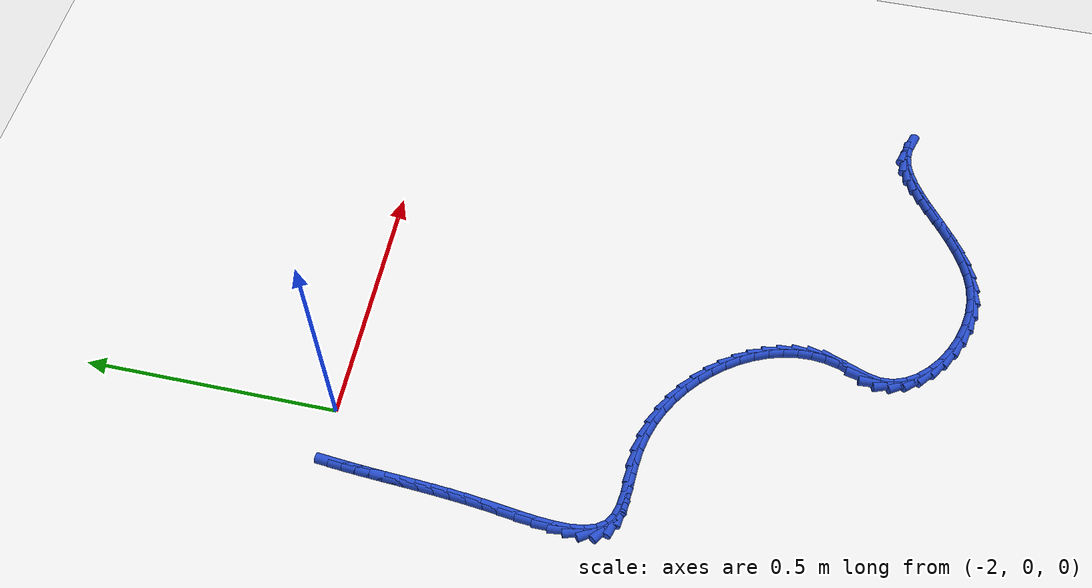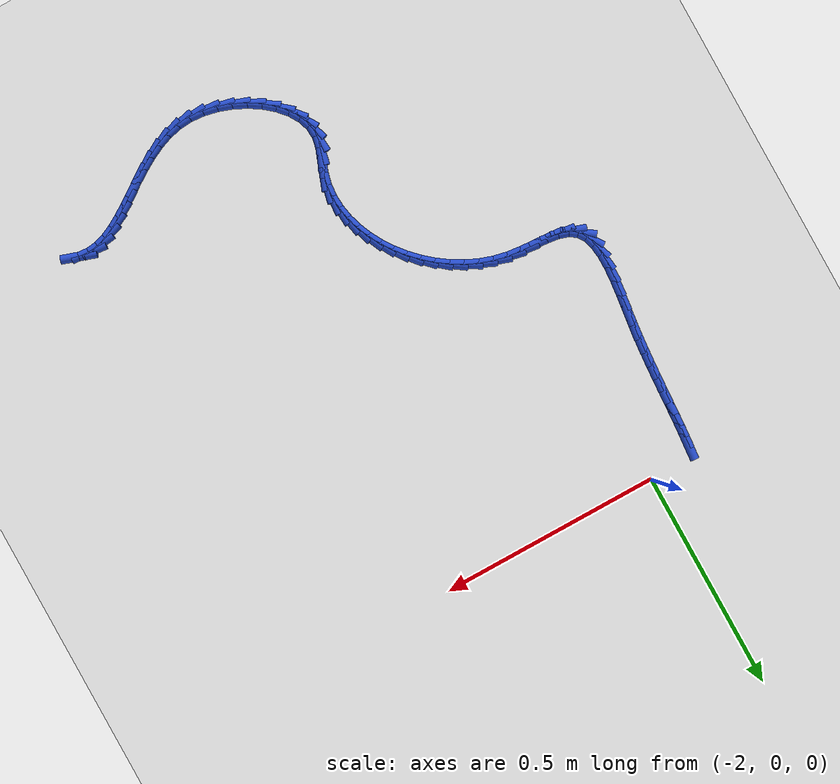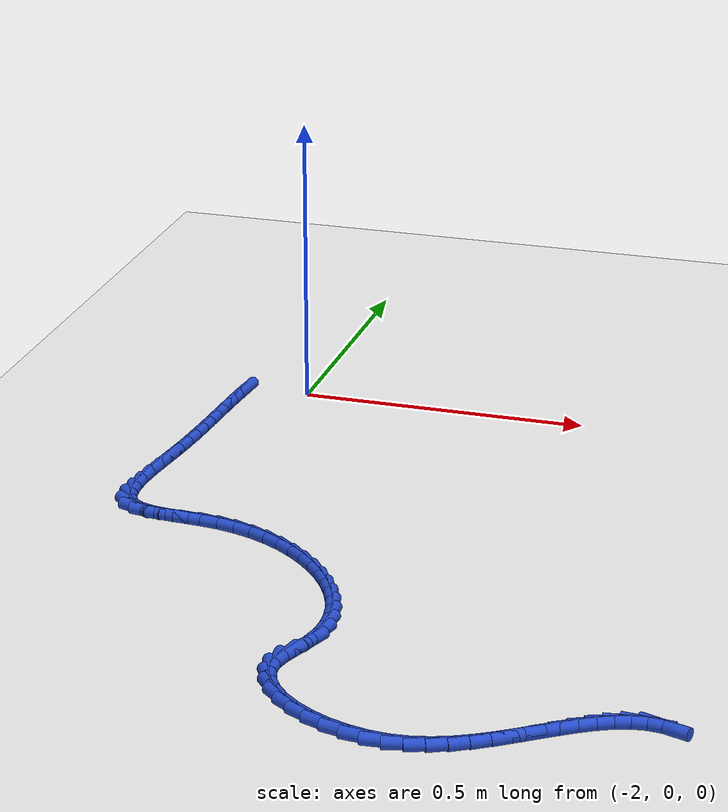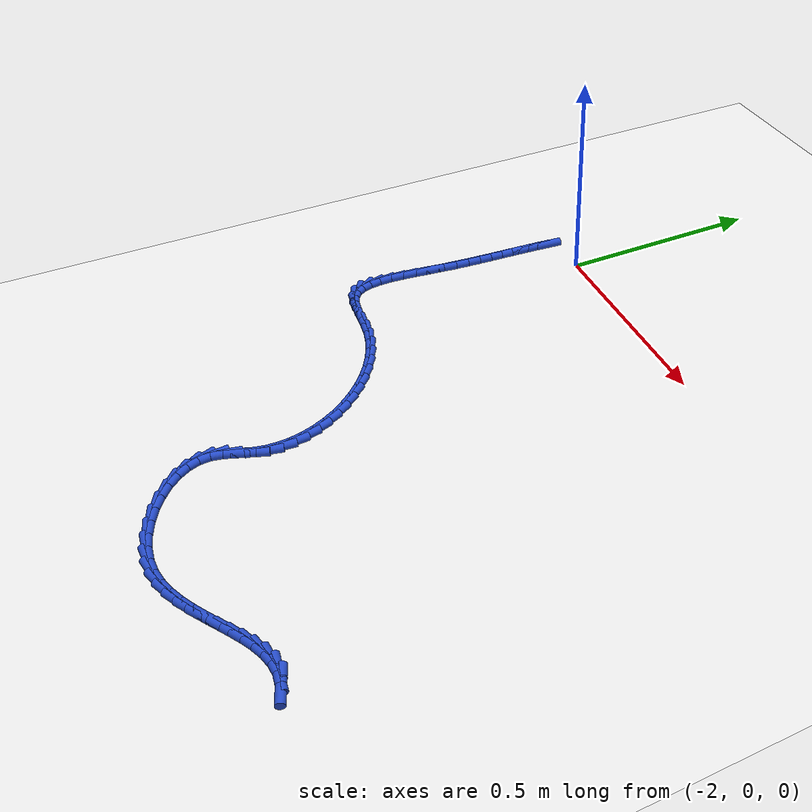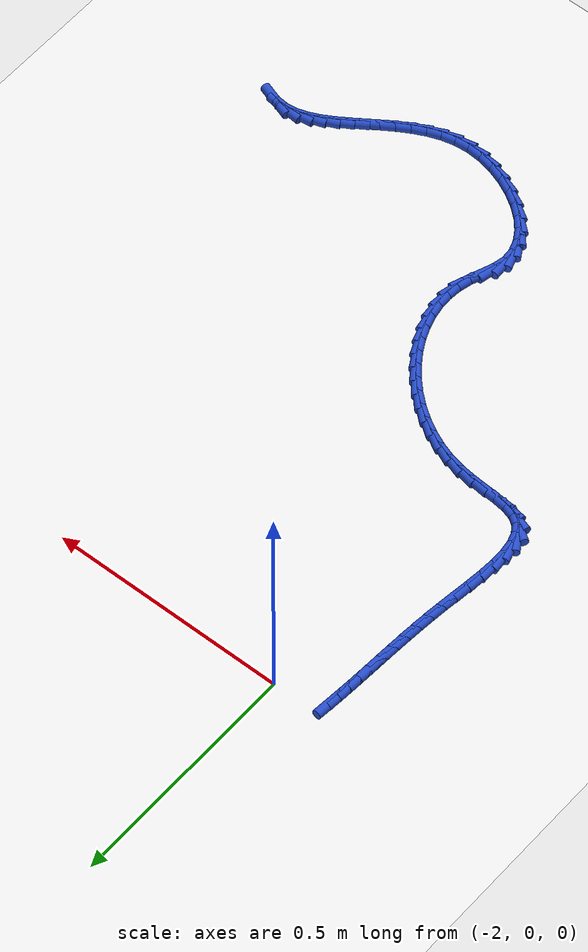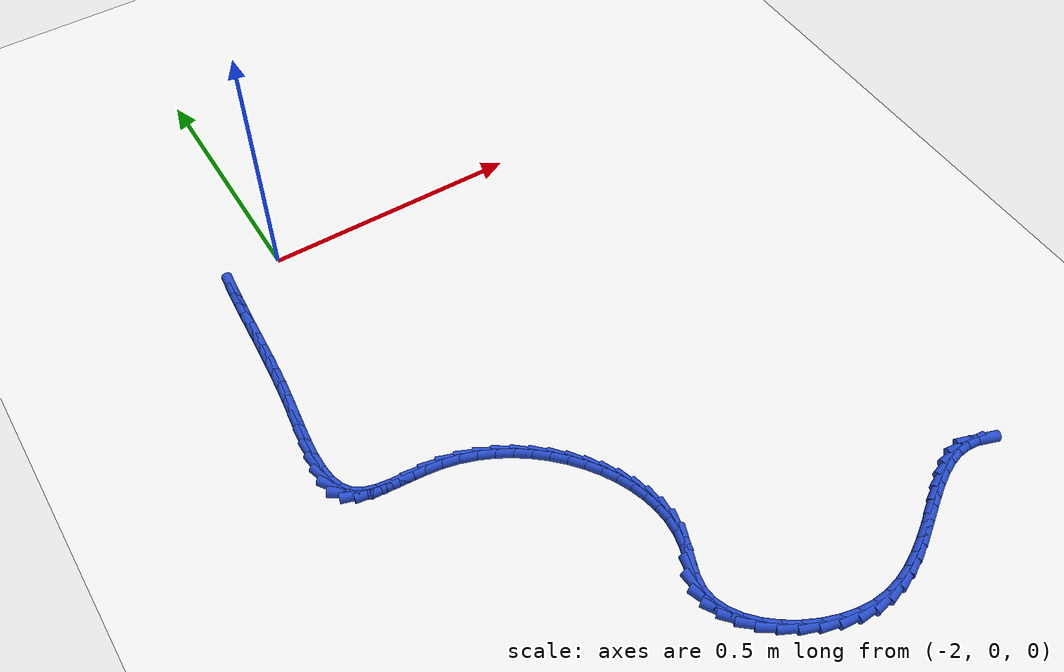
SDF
<sdf version="1.6">
 <world name="default">
  <model name="ground_plane">
   <static>1</static>
   <link name="link">
    <collision name="collision">
     <geometry><plane><normal>0 0 1</normal><size>100 100</size></plane></geometry>
     <surface><friction><ode><mu>100</mu><mu2>50</mu2></ode></friction></surface>
    </collision>
    <visual name="visual">
     <cast_shadows>0</cast_shadows>
     <geometry><plane><normal>0 0 1</normal><size>100 100</size></plane></geometry>
     <material>
      <script><uri>file://media/materials/scripts/gazebo.material</uri><name>Gazebo/WhiteGlow</name></script>
     </material>
    </visual>
   </link>
  </model>
  <model name="line">
   <link name="link_134">
    <pose>-2.1068086444791385 -0.03266669244758948 0.01 0 1.57 1.4844770521566288</pose>
    <collision name="collision">
     <geometry><cylinder><radius>0.01</radius><length>0.08</length></cylinder></geometry>
    </collision>
    <visual name="visual">
     <material>
      <script><name>Gazebo/Blue</name><uri>file://media/materials/scripts/gazebo.material</uri></script>
     </material>
     <geometry><cylinder><radius>0.01</radius><length>0.08</length></cylinder></geometry>
    </visual>
   </link>
   <link name="link_135">
    <pose>-2.1090573426039714 -0.058652896902352564 0.01 0 1.57 1.4979463491609721</pose>
    <collision name="collision">
     <geometry><cylinder><radius>0.01</radius><length>0.08</length></cylinder></geometry>
    </collision>
    <visual name="visual">
     <material>
      <script><name>Gazebo/Blue</name><uri>file://media/materials/scripts/gazebo.material</uri></script>
     </material>
     <geometry><cylinder><radius>0.01</radius><length>0.08</length></cylinder></geometry>
    </visual>
   </link>
   <link name="link_136">
    <pose>-2.110982095978381 -0.08502692289765218 0.01 0 1.57 1.5070027642279424</pose>
    <collision name="collision">
     <geometry><cylinder><radius>0.01</radius><length>0.08</length></cylinder></geometry>
    </collision>
    <visual name="visual">
     <material>
      <script><name>Gazebo/Blue</name><uri>file://media/materials/scripts/gazebo.material</uri></script>
     </material>
     <geometry><cylinder><radius>0.01</radius><length>0.08</length></cylinder></geometry>
    </visual>
   </link>
   <link name="link_137">
    <pose>-2.112695857216883 -0.11185464271410445 0.01 0 1.57 1.5117833160112184</pose>
    <collision name="collision">
     <geometry><cylinder><radius>0.01</radius><length>0.08</length></cylinder></geometry>
    </collision>
    <visual name="visual">
     <material>
      <script><name>Gazebo/Blue</name><uri>file://media/materials/scripts/gazebo.material</uri></script>
     </material>
     <geometry><cylinder><radius>0.01</radius><length>0.08</length></cylinder></geometry>
    </visual>
   </link>
   <link name="link_138">
    <pose>-2.1143115789339952 -0.13920192863232833 0.01 0 1.57 1.5124852854389133</pose>
    <collision name="collision">
     <geometry><cylinder><radius>0.01</radius><length>0.08</length></cylinder></geometry>
    </collision>
    <visual name="visual">
     <material>
      <script><name>Gazebo/Blue</name><uri>file://media/materials/scripts/gazebo.material</uri></script>
     </material>
     <geometry><cylinder><radius>0.01</radius><length>0.08</length></cylinder></geometry>
    </visual>
   </link>
   <link name="link_139">
    <pose>-2.115942213744233 -0.1671346529329395 0.01 0 1.57 1.5093533903541105</pose>
    <collision name="collision">
     <geometry><cylinder><radius>0.01</radius><length>0.08</length></cylinder></geometry>
    </collision>
    <visual name="visual">
     <material>
      <script><name>Gazebo/Blue</name><uri>file://media/materials/scripts/gazebo.material</uri></script>
     </material>
     <geometry><cylinder><radius>0.01</radius><length>0.08</length></cylinder></geometry>
    </visual>
   </link>
   <link name="link_140">
    <pose>-2.1177007142621145 -0.19571868789655616 0.01 0 1.57 1.50266862347929</pose>
    <collision name="collision">
     <geometry><cylinder><radius>0.01</radius><length>0.08</length></cylinder></geometry>
    </collision>
    <visual name="visual">
     <material>
      <script><name>Gazebo/Blue</name><uri>file://media/materials/scripts/gazebo.material</uri></script>
     </material>
     <geometry><cylinder><radius>0.01</radius><length>0.08</length></cylinder></geometry>
    </visual>
   </link>
   <link name="link_141">
    <pose>-2.119700033102155 -0.22501990580379655 0.01 0 1.57 1.492738642069525</pose>
    <collision name="collision">
     <geometry><cylinder><radius>0.01</radius><length>0.08</length></cylinder></geometry>
    </collision>
    <visual name="visual">
     <material>
      <script><name>Gazebo/Blue</name><uri>file://media/materials/scripts/gazebo.material</uri></script>
     </material>
     <geometry><cylinder><radius>0.01</radius><length>0.08</length></cylinder></geometry>
    </visual>
   </link>
   <link name="link_142">
    <pose>-2.122053122878872 -0.2551041789352762 0.01 0 1.57 1.4798894280258008</pose>
    <collision name="collision">
     <geometry><cylinder><radius>0.01</radius><length>0.08</length></cylinder></geometry>
    </collision>
    <visual name="visual">
     <material>
      <script><name>Gazebo/Blue</name><uri>file://media/materials/scripts/gazebo.material</uri></script>
     </material>
     <geometry><cylinder><radius>0.01</radius><length>0.08</length></cylinder></geometry>
    </visual>
   </link>
   <link name="link_143">
    <pose>-2.124872936206782 -0.2860373795716143 0.01 0 1.57 1.464457902787541</pose>
    <collision name="collision">
     <geometry><cylinder><radius>0.01</radius><length>0.08</length></cylinder></geometry>
    </collision>
    <visual name="visual">
     <material>
      <script><name>Gazebo/Blue</name><uri>file://media/materials/scripts/gazebo.material</uri></script>
     </material>
     <geometry><cylinder><radius>0.01</radius><length>0.08</length></cylinder></geometry>
    </visual>
   </link>
   <link name="link_144">
    <pose>-2.128272425700401 -0.31788537999342625 0.01 0 1.57 1.4480944627102281</pose>
    <collision name="collision">
     <geometry><cylinder><radius>0.01</radius><length>0.08</length></cylinder></geometry>
    </collision>
    <visual name="visual">
     <material>
      <script><name>Gazebo/Blue</name><uri>file://media/materials/scripts/gazebo.material</uri></script>
     </material>
     <geometry><cylinder><radius>0.01</radius><length>0.08</length></cylinder></geometry>
    </visual>
   </link>
   <link name="link_145">
    <pose>-2.1323146857202593 -0.3506636368152151 0.01 0 1.57 1.4446299850910094</pose>
    <collision name="collision">
     <geometry><cylinder><radius>0.01</radius><length>0.08</length></cylinder></geometry>
    </collision>
    <visual name="visual">
     <material>
      <script><name>Gazebo/Blue</name><uri>file://media/materials/scripts/gazebo.material</uri></script>
     </material>
     <geometry><cylinder><radius>0.01</radius><length>0.08</length></cylinder></geometry>
    </visual>
   </link>
   <link name="link_146">
    <pose>-2.1365230014316583 -0.38384176242356793 0.01 0 1.57 1.4621762337543636</pose>
    <collision name="collision">
     <geometry><cylinder><radius>0.01</radius><length>0.08</length></cylinder></geometry>
    </collision>
    <visual name="visual">
     <material>
      <script><name>Gazebo/Blue</name><uri>file://media/materials/scripts/gazebo.material</uri></script>
     </material>
     <geometry><cylinder><radius>0.01</radius><length>0.08</length></cylinder></geometry>
    </visual>
   </link>
   <link name="link_147">
    <pose>-2.1400904030120764 -0.4165554219873617 0.01 0 1.57 1.5035059491898177</pose>
    <collision name="collision">
     <geometry><cylinder><radius>0.01</radius><length>0.08</length></cylinder></geometry>
    </collision>
    <visual name="visual">
     <material>
      <script><name>Gazebo/Blue</name><uri>file://media/materials/scripts/gazebo.material</uri></script>
     </material>
     <geometry><cylinder><radius>0.01</radius><length>0.08</length></cylinder></geometry>
    </visual>
   </link>
   <link name="link_148">
    <pose>-2.1422051717268427 -0.44793547867078 0.01 0 1.57 -1.5656696876574665</pose>
    <collision name="collision">
     <geometry><cylinder><radius>0.01</radius><length>0.08</length></cylinder></geometry>
    </collision>
    <visual name="visual">
     <material>
      <script><name>Gazebo/Blue</name><uri>file://media/materials/scripts/gazebo.material</uri></script>
     </material>
     <geometry><cylinder><radius>0.01</radius><length>0.08</length></cylinder></geometry>
    </visual>
   </link>
   <link name="link_149">
    <pose>-2.1420555888412838 -0.4771127956380103 0.01 0 1.57 -1.4478569762145326</pose>
    <collision name="collision">
     <geometry><cylinder><radius>0.01</radius><length>0.08</length></cylinder></geometry>
    </collision>
    <visual name="visual">
     <material>
      <script><name>Gazebo/Blue</name><uri>file://media/materials/scripts/gazebo.material</uri></script>
     </material>
     <geometry><cylinder><radius>0.01</radius><length>0.08</length></cylinder></geometry>
    </visual>
   </link>
   <link name="link_150">
    <pose>-2.138829935620728 -0.5032182360532368 0.01 0 1.57 -1.2602412948703794</pose>
    <collision name="collision">
     <geometry><cylinder><radius>0.01</radius><length>0.08</length></cylinder></geometry>
    </collision>
    <visual name="visual">
     <material>
      <script><name>Gazebo/Blue</name><uri>file://media/materials/scripts/gazebo.material</uri></script>
     </material>
     <geometry><cylinder><radius>0.01</radius><length>0.08</length></cylinder></geometry>
    </visual>
   </link>
   <link name="link_151">
    <pose>-2.131716493330502 -0.525382663080646 0.01 0 1.57 -0.9731453382264331</pose>
    <collision name="collision">
     <geometry><cylinder><radius>0.01</radius><length>0.08</length></cylinder></geometry>
    </collision>
    <visual name="visual">
     <material>
      <script><name>Gazebo/Blue</name><uri>file://media/materials/scripts/gazebo.material</uri></script>
     </material>
     <geometry><cylinder><radius>0.01</radius><length>0.08</length></cylinder></geometry>
    </visual>
   </link>
   <link name="link_152">
    <pose>-2.1199035432359343 -0.5427369398844241 0.01 0 1.57 -0.5995415961542163</pose>
    <collision name="collision">
     <geometry><cylinder><radius>0.01</radius><length>0.08</length></cylinder></geometry>
    </collision>
    <visual name="visual">
     <material>
      <script><name>Gazebo/Blue</name><uri>file://media/materials/scripts/gazebo.material</uri></script>
     </material>
     <geometry><cylinder><radius>0.01</radius><length>0.08</length></cylinder></geometry>
    </visual>
   </link>
   <link name="link_153">
    <pose>-2.102662566532243 -0.554520527866192 0.01 0 1.57 -0.29843457311137883</pose>
    <collision name="collision">
     <geometry><cylinder><radius>0.01</radius><length>0.08</length></cylinder></geometry>
    </collision>
    <visual name="visual">
     <material>
      <script><name>Gazebo/Blue</name><uri>file://media/materials/scripts/gazebo.material</uri></script>
     </material>
     <geometry><cylinder><radius>0.01</radius><length>0.08</length></cylinder></geometry>
    </visual>
   </link>
   <link name="link_154">
    <pose>-2.080347094895389 -0.5613852547021646 0.01 0 1.57 -0.13560051174953994</pose>
    <collision name="collision">
     <geometry><cylinder><radius>0.01</radius><length>0.08</length></cylinder></geometry>
    </collision>
    <visual name="visual">
     <material>
      <script><name>Gazebo/Blue</name><uri>file://media/materials/scripts/gazebo.material</uri></script>
     </material>
     <geometry><cylinder><radius>0.01</radius><length>0.08</length></cylinder></geometry>
    </visual>
   </link>
   <link name="link_155">
    <pose>-2.054067470263263 -0.5649707885706685 0.01 0 1.57 -0.0674260516540573</pose>
    <collision name="collision">
     <geometry><cylinder><radius>0.01</radius><length>0.08</length></cylinder></geometry>
    </collision>
    <visual name="visual">
     <material>
      <script><name>Gazebo/Blue</name><uri>file://media/materials/scripts/gazebo.material</uri></script>
     </material>
     <geometry><cylinder><radius>0.01</radius><length>0.08</length></cylinder></geometry>
    </visual>
   </link>
   <link name="link_156">
    <pose>-2.024949569073129 -0.566937074340819 0.01 0 1.57 -0.06500600501013208</pose>
    <collision name="collision">
     <geometry><cylinder><radius>0.01</radius><length>0.08</length></cylinder></geometry>
    </collision>
    <visual name="visual">
     <material>
      <script><name>Gazebo/Blue</name><uri>file://media/materials/scripts/gazebo.material</uri></script>
     </material>
     <geometry><cylinder><radius>0.01</radius><length>0.08</length></cylinder></geometry>
    </visual>
   </link>
   <link name="link_157">
    <pose>-1.9941192677622555 -0.5689440568817304 0.01 0 1.57 -0.11747062935977712</pose>
    <collision name="collision">
     <geometry><cylinder><radius>0.01</radius><length>0.08</length></cylinder></geometry>
    </collision>
    <visual name="visual">
     <material>
      <script><name>Gazebo/Blue</name><uri>file://media/materials/scripts/gazebo.material</uri></script>
     </material>
     <geometry><cylinder><radius>0.01</radius><length>0.08</length></cylinder></geometry>
    </visual>
   </link>
   <link name="link_158">
    <pose>-1.9627024427679076 -0.572651681062518 0.01 0 1.57 -0.21743974920453565</pose>
    <collision name="collision">
     <geometry><cylinder><radius>0.01</radius><length>0.08</length></cylinder></geometry>
    </collision>
    <visual name="visual">
     <material>
      <script><name>Gazebo/Blue</name><uri>file://media/materials/scripts/gazebo.material</uri></script>
     </material>
     <geometry><cylinder><radius>0.01</radius><length>0.08</length></cylinder></geometry>
    </visual>
   </link>
   <link name="link_159">
    <pose>-1.9317218896990032 -0.5794962975584382 0.01 0 1.57 -0.325160966967731</pose>
    <collision name="collision">
     <geometry><cylinder><radius>0.01</radius><length>0.08</length></cylinder></geometry>
    </collision>
    <visual name="visual">
     <material>
      <script><name>Gazebo/Blue</name><uri>file://media/materials/scripts/gazebo.material</uri></script>
     </material>
     <geometry><cylinder><radius>0.01</radius><length>0.08</length></cylinder></geometry>
    </visual>
   </link>
   <link name="link_160">
    <pose>-1.9016156764080483 -0.5896459151676622 0.01 0 1.57 -0.4264633647474093</pose>
    <collision name="collision">
     <geometry><cylinder><radius>0.01</radius><length>0.08</length></cylinder></geometry>
    </collision>
    <visual name="visual">
     <material>
      <script><name>Gazebo/Blue</name><uri>file://media/materials/scripts/gazebo.material</uri></script>
     </material>
     <geometry><cylinder><radius>0.01</radius><length>0.08</length></cylinder></geometry>
    </visual>
   </link>
   <link name="link_161">
    <pose>-1.87261594598807 -0.6028218681580182 0.01 0 1.57 -0.5223192898124341</pose>
    <collision name="collision">
     <geometry><cylinder><radius>0.01</radius><length>0.08</length></cylinder></geometry>
    </collision>
    <visual name="visual">
     <material>
      <script><name>Gazebo/Blue</name><uri>file://media/materials/scripts/gazebo.material</uri></script>
     </material>
     <geometry><cylinder><radius>0.01</radius><length>0.08</length></cylinder></geometry>
    </visual>
   </link>
   <link name="link_162">
    <pose>-1.8449546116221913 -0.6187449920962529 0.01 0 1.57 -0.6139958991740627</pose>
    <collision name="collision">
     <geometry><cylinder><radius>0.01</radius><length>0.08</length></cylinder></geometry>
    </collision>
    <visual name="visual">
     <material>
      <script><name>Gazebo/Blue</name><uri>file://media/materials/scripts/gazebo.material</uri></script>
     </material>
     <geometry><cylinder><radius>0.01</radius><length>0.08</length></cylinder></geometry>
    </visual>
   </link>
   <link name="link_163">
    <pose>-1.8188635864935327 -0.6371361225491149 0.01 0 1.57 -0.7029261627513926</pose>
    <collision name="collision">
     <geometry><cylinder><radius>0.01</radius><length>0.08</length></cylinder></geometry>
    </collision>
    <visual name="visual">
     <material>
      <script><name>Gazebo/Blue</name><uri>file://media/materials/scripts/gazebo.material</uri></script>
     </material>
     <geometry><cylinder><radius>0.01</radius><length>0.08</length></cylinder></geometry>
    </visual>
   </link>
   <link name="link_164">
    <pose>-1.7945747837852166 -0.6577160950833507 0.01 0 1.57 -0.790649800510116</pose>
    <collision name="collision">
     <geometry><cylinder><radius>0.01</radius><length>0.08</length></cylinder></geometry>
    </collision>
    <visual name="visual">
     <material>
      <script><name>Gazebo/Blue</name><uri>file://media/materials/scripts/gazebo.material</uri></script>
     </material>
     <geometry><cylinder><radius>0.01</radius><length>0.08</length></cylinder></geometry>
    </visual>
   </link>
   <link name="link_165">
    <pose>-1.7723201166803624 -0.6802057452657091 0.01 0 1.57 -0.8787928428503465</pose>
    <collision name="collision">
     <geometry><cylinder><radius>0.01</radius><length>0.08</length></cylinder></geometry>
    </collision>
    <visual name="visual">
     <material>
      <script><name>Gazebo/Blue</name><uri>file://media/materials/scripts/gazebo.material</uri></script>
     </material>
     <geometry><cylinder><radius>0.01</radius><length>0.08</length></cylinder></geometry>
    </visual>
   </link>
   <link name="link_166">
    <pose>-1.7523314983620932 -0.7043259086629363 0.01 0 1.57 -0.9690692559582508</pose>
    <collision name="collision">
     <geometry><cylinder><radius>0.01</radius><length>0.08</length></cylinder></geometry>
    </collision>
    <visual name="visual">
     <material>
      <script><name>Gazebo/Blue</name><uri>file://media/materials/scripts/gazebo.material</uri></script>
     </material>
     <geometry><cylinder><radius>0.01</radius><length>0.08</length></cylinder></geometry>
    </visual>
   </link>
   <link name="link_167">
    <pose>-1.7348408420135288 -0.7297974208417812 0.01 0 1.57 -1.0632867278077511</pose>
    <collision name="collision">
     <geometry><cylinder><radius>0.01</radius><length>0.08</length></cylinder></geometry>
    </collision>
    <visual name="visual">
     <material>
      <script><name>Gazebo/Blue</name><uri>file://media/materials/scripts/gazebo.material</uri></script>
     </material>
     <geometry><cylinder><radius>0.01</radius><length>0.08</length></cylinder></geometry>
    </visual>
   </link>
   <link name="link_168">
    <pose>-1.7200800608177924 -0.7563411173689903 0.01 0 1.57 -1.163334356854767</pose>
    <collision name="collision">
     <geometry><cylinder><radius>0.01</radius><length>0.08</length></cylinder></geometry>
    </collision>
    <visual name="visual">
     <material>
      <script><name>Gazebo/Blue</name><uri>file://media/materials/scripts/gazebo.material</uri></script>
     </material>
     <geometry><cylinder><radius>0.01</radius><length>0.08</length></cylinder></geometry>
    </visual>
   </link>
   <link name="link_169">
    <pose>-1.7082810679580032 -0.7836778338113123 0.01 0 1.57 -1.2711207881562754</pose>
    <collision name="collision">
     <geometry><cylinder><radius>0.01</radius><length>0.08</length></cylinder></geometry>
    </collision>
    <visual name="visual">
     <material>
      <script><name>Gazebo/Blue</name><uri>file://media/materials/scripts/gazebo.material</uri></script>
     </material>
     <geometry><cylinder><radius>0.01</radius><length>0.08</length></cylinder></geometry>
    </visual>
   </link>
   <link name="link_170">
    <pose>-1.6996757766172843 -0.8115284057354933 0.01 0 1.57 -1.3884187984460727</pose>
    <collision name="collision">
     <geometry><cylinder><radius>0.01</radius><length>0.08</length></cylinder></geometry>
    </collision>
    <visual name="visual">
     <material>
      <script><name>Gazebo/Blue</name><uri>file://media/materials/scripts/gazebo.material</uri></script>
     </material>
     <geometry><cylinder><radius>0.01</radius><length>0.08</length></cylinder></geometry>
    </visual>
   </link>
   <link name="link_171">
    <pose>-1.694496099978756 -0.8396136687082818 0.01 0 1.57 -1.5165661743738852</pose>
    <collision name="collision">
     <geometry><cylinder><radius>0.01</radius><length>0.08</length></cylinder></geometry>
    </collision>
    <visual name="visual">
     <material>
      <script><name>Gazebo/Blue</name><uri>file://media/materials/scripts/gazebo.material</uri></script>
     </material>
     <geometry><cylinder><radius>0.01</radius><length>0.08</length></cylinder></geometry>
    </visual>
   </link>
   <link name="link_172">
    <pose>-1.69297395122554 -0.8676544582964261 0.01 0 1.57 1.485594168202156</pose>
    <collision name="collision">
     <geometry><cylinder><radius>0.01</radius><length>0.08</length></cylinder></geometry>
    </collision>
    <visual name="visual">
     <material>
      <script><name>Gazebo/Blue</name><uri>file://media/materials/scripts/gazebo.material</uri></script>
     </material>
     <geometry><cylinder><radius>0.01</radius><length>0.08</length></cylinder></geometry>
    </visual>
   </link>
   <link name="link_173">
    <pose>-1.6953412435407575 -0.8953716100666722 0.01 0 1.57 1.33591221660681</pose>
    <collision name="collision">
     <geometry><cylinder><radius>0.01</radius><length>0.08</length></cylinder></geometry>
    </collision>
    <visual name="visual">
     <material>
      <script><name>Gazebo/Blue</name><uri>file://media/materials/scripts/gazebo.material</uri></script>
     </material>
     <geometry><cylinder><radius>0.01</radius><length>0.08</length></cylinder></geometry>
    </visual>
   </link>
   <link name="link_174">
    <pose>-1.7018297435992598 -0.9224859779084221 0.01 0 1.57 1.2093223872117105</pose>
    <collision name="collision">
     <geometry><cylinder><radius>0.01</radius><length>0.08</length></cylinder></geometry>
    </collision>
    <visual name="visual">
     <material>
      <script><name>Gazebo/Blue</name><uri>file://media/materials/scripts/gazebo.material</uri></script>
     </material>
     <geometry><cylinder><radius>0.01</radius><length>0.08</length></cylinder></geometry>
    </visual>
   </link>
   <link name="link_175">
    <pose>-1.7117895640250034 -0.9488286773426898 0.01 0 1.57 1.2068420103206203</pose>
    <collision name="collision">
     <geometry><cylinder><radius>0.01</radius><length>0.08</length></cylinder></geometry>
    </collision>
    <visual name="visual">
     <material>
      <script><name>Gazebo/Blue</name><uri>file://media/materials/scripts/gazebo.material</uri></script>
     </material>
     <geometry><cylinder><radius>0.01</radius><length>0.08</length></cylinder></geometry>
    </visual>
   </link>
   <link name="link_176">
    <pose>-1.7216070472262102 -0.9746014796362364 0.01 0 1.57 1.3603385348905275</pose>
    <collision name="collision">
     <geometry><cylinder><radius>0.01</radius><length>0.08</length></cylinder></geometry>
    </collision>
    <visual name="visual">
     <material>
      <script><name>Gazebo/Blue</name><uri>file://media/materials/scripts/gazebo.material</uri></script>
     </material>
     <geometry><cylinder><radius>0.01</radius><length>0.08</length></cylinder></geometry>
    </visual>
   </link>
   <link name="link_177">
    <pose>-1.727050512895585 -1.0000833546453527 0.01 0 1.57 -1.4990492773579278</pose>
    <collision name="collision">
     <geometry><cylinder><radius>0.01</radius><length>0.08</length></cylinder></geometry>
    </collision>
    <visual name="visual">
     <material>
      <script><name>Gazebo/Blue</name><uri>file://media/materials/scripts/gazebo.material</uri></script>
     </material>
     <geometry><cylinder><radius>0.01</radius><length>0.08</length></cylinder></geometry>
    </visual>
   </link>
   <link name="link_178">
    <pose>-1.7252342797090792 -1.0253542987896247 0.01 0 1.57 -1.2323733453197427</pose>
    <collision name="collision">
     <geometry><cylinder><radius>0.01</radius><length>0.08</length></cylinder></geometry>
    </collision>
    <visual name="visual">
     <material>
      <script><name>Gazebo/Blue</name><uri>file://media/materials/scripts/gazebo.material</uri></script>
     </material>
     <geometry><cylinder><radius>0.01</radius><length>0.08</length></cylinder></geometry>
    </visual>
   </link>
   <link name="link_179">
    <pose>-1.7165567838689162 -1.0500088310411135 0.01 0 1.57 -1.0145239279126634</pose>
    <collision name="collision">
     <geometry><cylinder><radius>0.01</radius><length>0.08</length></cylinder></geometry>
    </collision>
    <visual name="visual">
     <material>
      <script><name>Gazebo/Blue</name><uri>file://media/materials/scripts/gazebo.material</uri></script>
     </material>
     <geometry><cylinder><radius>0.01</radius><length>0.08</length></cylinder></geometry>
    </visual>
   </link>
   <link name="link_180">
    <pose>-1.7019079168527156 -1.0735688205806502 0.01 0 1.57 -0.8394465211785888</pose>
    <collision name="collision">
     <geometry><cylinder><radius>0.01</radius><length>0.08</length></cylinder></geometry>
    </collision>
    <visual name="visual">
     <material>
      <script><name>Gazebo/Blue</name><uri>file://media/materials/scripts/gazebo.material</uri></script>
     </material>
     <geometry><cylinder><radius>0.01</radius><length>0.08</length></cylinder></geometry>
    </visual>
   </link>
   <link name="link_181">
    <pose>-1.6821775701380954 -1.095556136589062 0.01 0 1.57 -0.6947769058196288</pose>
    <collision name="collision">
     <geometry><cylinder><radius>0.01</radius><length>0.08</length></cylinder></geometry>
    </collision>
    <visual name="visual">
     <material>
      <script><name>Gazebo/Blue</name><uri>file://media/materials/scripts/gazebo.material</uri></script>
     </material>
     <geometry><cylinder><radius>0.01</radius><length>0.08</length></cylinder></geometry>
    </visual>
   </link>
   <link name="link_182">
    <pose>-1.6582556352026745 -1.1154926482471796 0.01 0 1.57 -0.5689079260078574</pose>
    <collision name="collision">
     <geometry><cylinder><radius>0.01</radius><length>0.08</length></cylinder></geometry>
    </collision>
    <visual name="visual">
     <material>
      <script><name>Gazebo/Blue</name><uri>file://media/materials/scripts/gazebo.material</uri></script>
     </material>
     <geometry><cylinder><radius>0.01</radius><length>0.08</length></cylinder></geometry>
    </visual>
   </link>
   <link name="link_183">
    <pose>-1.6310320035240695 -1.1329002247358322 0.01 0 1.57 -0.45232190535778805</pose>
    <collision name="collision">
     <geometry><cylinder><radius>0.01</radius><length>0.08</length></cylinder></geometry>
    </collision>
    <visual name="visual">
     <material>
      <script><name>Gazebo/Blue</name><uri>file://media/materials/scripts/gazebo.material</uri></script>
     </material>
     <geometry><cylinder><radius>0.01</radius><length>0.08</length></cylinder></geometry>
    </visual>
   </link>
   <link name="link_184">
    <pose>-1.6013965665799004 -1.147300735235848 0.01 0 1.57 -0.3369676040064986</pose>
    <collision name="collision">
     <geometry><cylinder><radius>0.01</radius><length>0.08</length></cylinder></geometry>
    </collision>
    <visual name="visual">
     <material>
      <script><name>Gazebo/Blue</name><uri>file://media/materials/scripts/gazebo.material</uri></script>
     </material>
     <geometry><cylinder><radius>0.01</radius><length>0.08</length></cylinder></geometry>
    </visual>
   </link>
   <link name="link_185">
    <pose>-1.5702392158477845 -1.1582160489280575 0.01 0 1.57 -0.21529948051987166</pose>
    <collision name="collision">
     <geometry><cylinder><radius>0.01</radius><length>0.08</length></cylinder></geometry>
    </collision>
    <visual name="visual">
     <material>
      <script><name>Gazebo/Blue</name><uri>file://media/materials/scripts/gazebo.material</uri></script>
     </material>
     <geometry><cylinder><radius>0.01</radius><length>0.08</length></cylinder></geometry>
    </visual>
   </link>
   <link name="link_186">
    <pose>-1.538449842805341 -1.1651680349932891 0.01 0 1.57 -0.0794520530398237</pose>
    <collision name="collision">
     <geometry><cylinder><radius>0.01</radius><length>0.08</length></cylinder></geometry>
    </collision>
    <visual name="visual">
     <material>
      <script><name>Gazebo/Blue</name><uri>file://media/materials/scripts/gazebo.material</uri></script>
     </material>
     <geometry><cylinder><radius>0.01</radius><length>0.08</length></cylinder></geometry>
    </visual>
   </link>
   <link name="link_187">
    <pose>-1.5069183389301877 -1.1676785626123727 0.01 0 1.57 0.0763461073488774</pose>
    <collision name="collision">
     <geometry><cylinder><radius>0.01</radius><length>0.08</length></cylinder></geometry>
    </collision>
    <visual name="visual">
     <material>
      <script><name>Gazebo/Blue</name><uri>file://media/materials/scripts/gazebo.material</uri></script>
     </material>
     <geometry><cylinder><radius>0.01</radius><length>0.08</length></cylinder></geometry>
    </visual>
   </link>
   <link name="link_188">
    <pose>-1.4764710176417144 -1.1653495012382622 0.01 0 1.57 0.22911485402538898</pose>
    <collision name="collision">
     <geometry><cylinder><radius>0.01</radius><length>0.08</length></cylinder></geometry>
    </collision>
    <visual name="visual">
     <material>
      <script><name>Gazebo/Blue</name><uri>file://media/materials/scripts/gazebo.material</uri></script>
     </material>
     <geometry><cylinder><radius>0.01</radius><length>0.08</length></cylinder></geometry>
    </visual>
   </link>
   <link name="link_189">
    <pose>-1.4473229250647424 -1.1585518779746669 0.01 0 1.57 0.3579985848579884</pose>
    <collision name="collision">
     <geometry><cylinder><radius>0.01</radius><length>0.08</length></cylinder></geometry>
    </collision>
    <visual name="visual">
     <material>
      <script><name>Gazebo/Blue</name><uri>file://media/materials/scripts/gazebo.material</uri></script>
     </material>
     <geometry><cylinder><radius>0.01</radius><length>0.08</length></cylinder></geometry>
    </visual>
   </link>
   <link name="link_190">
    <pose>-1.4193480152744542 -1.1480859160591665 0.01 0 1.57 0.45958975057747203</pose>
    <collision name="collision">
     <geometry><cylinder><radius>0.01</radius><length>0.08</length></cylinder></geometry>
    </collision>
    <visual name="visual">
     <material>
      <script><name>Gazebo/Blue</name><uri>file://media/materials/scripts/gazebo.material</uri></script>
     </material>
     <geometry><cylinder><radius>0.01</radius><length>0.08</length></cylinder></geometry>
    </visual>
   </link>
   <link name="link_191">
    <pose>-1.3924165341145767 -1.134756504797066 0.01 0 1.57 0.5341015989774492</pose>
    <collision name="collision">
     <geometry><cylinder><radius>0.01</radius><length>0.08</length></cylinder></geometry>
    </collision>
    <visual name="visual">
     <material>
      <script><name>Gazebo/Blue</name><uri>file://media/materials/scripts/gazebo.material</uri></script>
     </material>
     <geometry><cylinder><radius>0.01</radius><length>0.08</length></cylinder></geometry>
    </visual>
   </link>
   <link name="link_192">
    <pose>-1.36639872742884 -1.1193685334936718 0.01 0 1.57 0.5830217124949343</pose>
    <collision name="collision">
     <geometry><cylinder><radius>0.01</radius><length>0.08</length></cylinder></geometry>
    </collision>
    <visual name="visual">
     <material>
      <script><name>Gazebo/Blue</name><uri>file://media/materials/scripts/gazebo.material</uri></script>
     </material>
     <geometry><cylinder><radius>0.01</radius><length>0.08</length></cylinder></geometry>
    </visual>
   </link>
   <link name="link_193">
    <pose>-1.34116484106097 -1.1027268914542874 0.01 0 1.57 0.6075685816240671</pose>
    <collision name="collision">
     <geometry><cylinder><radius>0.01</radius><length>0.08</length></cylinder></geometry>
    </collision>
    <visual name="visual">
     <material>
      <script><name>Gazebo/Blue</name><uri>file://media/materials/scripts/gazebo.material</uri></script>
     </material>
     <geometry><cylinder><radius>0.01</radius><length>0.08</length></cylinder></geometry>
    </visual>
   </link>
   <link name="link_194">
    <pose>-1.316585120854695 -1.0856364679842183 0.01 0 1.57 0.6078072669649497</pose>
    <collision name="collision">
     <geometry><cylinder><radius>0.01</radius><length>0.08</length></cylinder></geometry>
    </collision>
    <visual name="visual">
     <material>
      <script><name>Gazebo/Blue</name><uri>file://media/materials/scripts/gazebo.material</uri></script>
     </material>
     <geometry><cylinder><radius>0.01</radius><length>0.08</length></cylinder></geometry>
    </visual>
   </link>
   <link name="link_195">
    <pose>-1.2925298126537421 -1.0689021523887694 0.01 0 1.57 0.5821145508457927</pose>
    <collision name="collision">
     <geometry><cylinder><radius>0.01</radius><length>0.08</length></cylinder></geometry>
    </collision>
    <visual name="visual">
     <material>
      <script><name>Gazebo/Blue</name><uri>file://media/materials/scripts/gazebo.material</uri></script>
     </material>
     <geometry><cylinder><radius>0.01</radius><length>0.08</length></cylinder></geometry>
    </visual>
   </link>
   <link name="link_196">
    <pose>-1.2688691623018398 -1.0533288339732454 0.01 0 1.57 0.5267950815919522</pose>
    <collision name="collision">
     <geometry><cylinder><radius>0.01</radius><length>0.08</length></cylinder></geometry>
    </collision>
    <visual name="visual">
     <material>
      <script><name>Gazebo/Blue</name><uri>file://media/materials/scripts/gazebo.material</uri></script>
     </material>
     <geometry><cylinder><radius>0.01</radius><length>0.08</length></cylinder></geometry>
    </visual>
   </link>
   <link name="link_197">
    <pose>-1.2454734156427163 -1.0397214020429524 0.01 0 1.57 0.43598130300164734</pose>
    <collision name="collision">
     <geometry><cylinder><radius>0.01</radius><length>0.08</length></cylinder></geometry>
    </collision>
    <visual name="visual">
     <material>
      <script><name>Gazebo/Blue</name><uri>file://media/materials/scripts/gazebo.material</uri></script>
     </material>
     <geometry><cylinder><radius>0.01</radius><length>0.08</length></cylinder></geometry>
    </visual>
   </link>
   <link name="link_198">
    <pose>-1.222212818520098 -1.028884745903194 0.01 0 1.57 0.30263963109493014</pose>
    <collision name="collision">
     <geometry><cylinder><radius>0.01</radius><length>0.08</length></cylinder></geometry>
    </collision>
    <visual name="visual">
     <material>
      <script><name>Gazebo/Blue</name><uri>file://media/materials/scripts/gazebo.material</uri></script>
     </material>
     <geometry><cylinder><radius>0.01</radius><length>0.08</length></cylinder></geometry>
    </visual>
   </link>
   <link name="link_199">
    <pose>-1.1989576167777145 -1.0216237548592761 0.01 0 1.57 0.12258544697792641</pose>
    <collision name="collision">
     <geometry><cylinder><radius>0.01</radius><length>0.08</length></cylinder></geometry>
    </collision>
    <visual name="visual">
     <material>
      <script><name>Gazebo/Blue</name><uri>file://media/materials/scripts/gazebo.material</uri></script>
     </material>
     <geometry><cylinder><radius>0.01</radius><length>0.08</length></cylinder></geometry>
    </visual>
   </link>
   <link name="link_200">
    <pose>-1.1755780562592912 -1.0187433182165033 0.01 0 1.57 -0.09722313878222551</pose>
    <collision name="collision">
     <geometry><cylinder><radius>0.01</radius><length>0.08</length></cylinder></geometry>
    </collision>
    <visual name="visual">
     <material>
      <script><name>Gazebo/Blue</name><uri>file://media/materials/scripts/gazebo.material</uri></script>
     </material>
     <geometry><cylinder><radius>0.01</radius><length>0.08</length></cylinder></geometry>
    </visual>
   </link>
   <link name="link_201">
    <pose>-1.1519443828085585 -1.021048325280181 0.01 0 1.57 -0.3242091767861583</pose>
    <collision name="collision">
     <geometry><cylinder><radius>0.01</radius><length>0.08</length></cylinder></geometry>
    </collision>
    <visual name="visual">
     <material>
      <script><name>Gazebo/Blue</name><uri>file://media/materials/scripts/gazebo.material</uri></script>
     </material>
     <geometry><cylinder><radius>0.01</radius><length>0.08</length></cylinder></geometry>
    </visual>
   </link>
  </model>
 </world>
</sdf>
